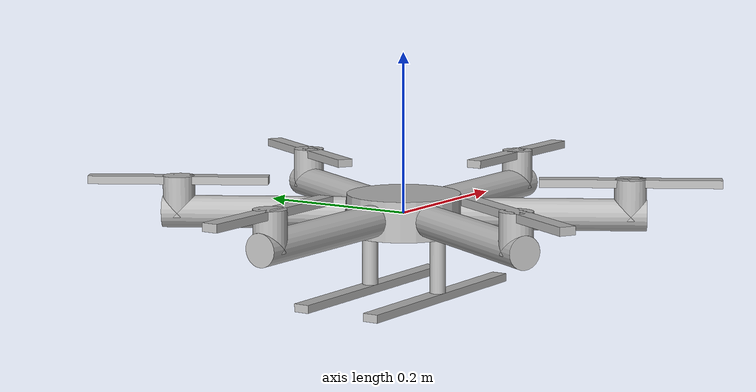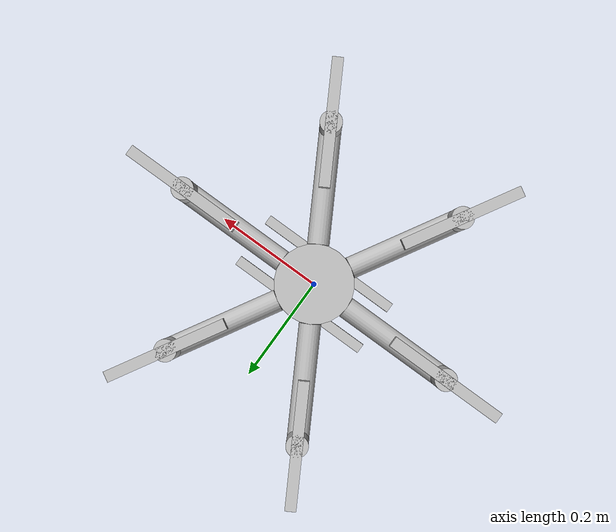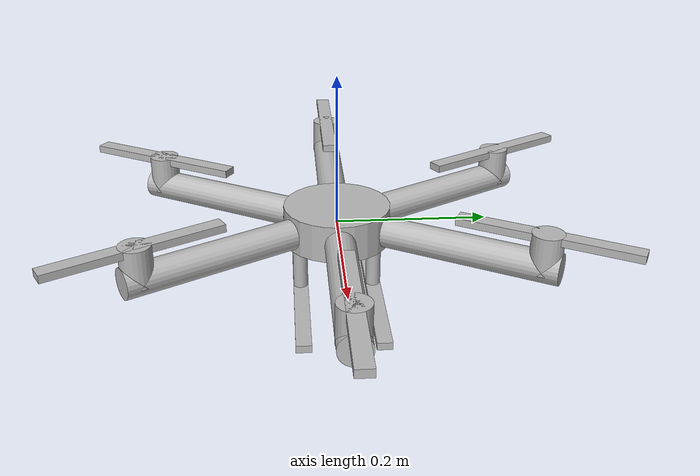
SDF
<sdf version='1.9'>
  <model name='variable_tilt_hexacopter'>
    <link name='base_dummy'>
      <inertial>
        <pose>0 0 -0.0050916496945010194 0 0 0</pose>
        <mass>1.964</mass>
        <inertia>
          <ixx>0.00414594350305499</ixx>
          <ixy>0</ixy>
          <ixz>0</ixz>
          <iyy>0.00314594350305499</iyy>
          <iyz>0</iyz>
          <izz>0.00534206</izz>
        </inertia>
      </inertial>
      <sensor name="imu_sensor" type="imu">
        <always_on>true</always_on>
        <update_rate>100.0</update_rate>
        <pose>0 0 0 0 0 0</pose>
        <topic>/model/variable_tilt_hexacopter/imu</topic>
        <imu>
          <angular_velocity>
            <x>
              <noise type="gaussian">
                <mean>0</mean>
                <stddev>0.009</stddev>
                <bias_mean>0.00075</bias_mean>
                <bias_stddev>0.005</bias_stddev>
                <dynamic_bias_stddev>0.00002</dynamic_bias_stddev>
                <dynamic_bias_correlation_time>400.0</dynamic_bias_correlation_time>
                <precision>0.00025</precision>
              </noise>
            </x>
            <y>
              <noise type="gaussian">
                <mean>0</mean>
                <stddev>0.009</stddev>
                <bias_mean>0.00075</bias_mean>
                <bias_stddev>0.005</bias_stddev>
                <dynamic_bias_stddev>0.00002</dynamic_bias_stddev>
                <dynamic_bias_correlation_time>400.0</dynamic_bias_correlation_time>
                <precision>0.00025</precision>
              </noise>
            </y>
            <z>
              <noise type="gaussian">
                <mean>0</mean>
                <stddev>0.009</stddev>
                <bias_mean>0.00075</bias_mean>
                <bias_stddev>0.005</bias_stddev>
                <dynamic_bias_stddev>0.00002</dynamic_bias_stddev>
                <dynamic_bias_correlation_time>400.0</dynamic_bias_correlation_time>
                <precision>0.00025</precision>
              </noise>
            </z>
          </angular_velocity>
          <linear_acceleration>
            <x>
              <noise type="gaussian">
                <mean>0</mean>
                <stddev>0.021</stddev>
                <bias_mean>0.05</bias_mean>
                <bias_stddev>0.0075</bias_stddev>
                <dynamic_bias_stddev>0.000375</dynamic_bias_stddev>
                <dynamic_bias_correlation_time>175.0</dynamic_bias_correlation_time>
                <precision>0.005</precision>
              </noise>
            </x>
            <y>
              <noise type="gaussian">
                <mean>0</mean>
                <stddev>0.021</stddev>
                <bias_mean>0.05</bias_mean>
                <bias_stddev>0.0075</bias_stddev>
                <dynamic_bias_stddev>0.000375</dynamic_bias_stddev>
                <dynamic_bias_correlation_time>175.0</dynamic_bias_correlation_time>
                <precision>0.005</precision>
              </noise>
            </y>
            <z>
              <noise type="gaussian">
                <mean>0</mean>
                <stddev>0.021</stddev>
                <bias_mean>0.05</bias_mean>
                <bias_stddev>0.0075</bias_stddev>
                <dynamic_bias_stddev>0.000375</dynamic_bias_stddev>
                <dynamic_bias_correlation_time>175.0</dynamic_bias_correlation_time>
                <precision>0.005</precision>
              </noise>
            </z>
          </linear_acceleration>
          <enable_orientation>true</enable_orientation>
        </imu>
        <plugin filename="ignition-gazebo-imu-system" name="ignition::gazebo::systems::Imu"/>
      </sensor>
      <collision name='base_dummy_fixed_joint_lump__base_collision'>
        <pose>0 0 0 0 0 0</pose>
        <geometry>
          <cylinder>
            <length>0.050000000000000003</length>
            <radius>0.070999999999999994</radius>
          </cylinder>
        </geometry>
      </collision>
      <collision name='base_dummy_fixed_joint_lump__gear_leg_left_collision_1'>
        <pose>0 0.050000000000000003 -0.050000000000000003 0 0 0</pose>
        <geometry>
          <cylinder>
            <length>0.10000000000000001</length>
            <radius>0.01</radius>
          </cylinder>
        </geometry>
      </collision>
      <collision name='base_dummy_fixed_joint_lump__gear_skid_left_collision_2'>
        <pose>0 0.050000000000000003 -0.10000000000000001 0 0 0</pose>
        <geometry>
          <box>
            <size>0.29999999999999999 0.02 0.01</size>
          </box>
        </geometry>
      </collision>
      <collision name='base_dummy_fixed_joint_lump__gear_leg_right_collision_3'>
        <pose>0 -0.050000000000000003 -0.050000000000000003 0 0 0</pose>
        <geometry>
          <cylinder>
            <length>0.10000000000000001</length>
            <radius>0.01</radius>
          </cylinder>
        </geometry>
      </collision>
      <collision name='base_dummy_fixed_joint_lump__gear_skid_right_collision_4'>
        <pose>0 -0.050000000000000003 -0.10000000000000001 0 0 0</pose>
        <geometry>
          <box>
            <size>0.29999999999999999 0.02 0.01</size>
          </box>
        </geometry>
      </collision>
      <visual name='base_dummy_fixed_joint_lump__base_visual'>
        <pose>0 0 0 0 0 0</pose>
        <geometry>
          <cylinder>
            <length>0.050000000000000003</length>
            <radius>0.070999999999999994</radius>
          </cylinder>
        </geometry>
      </visual>
      <visual name='base_dummy_fixed_joint_lump__gear_leg_left_visual_1'>
        <pose>0 0.050000000000000003 -0.050000000000000003 0 0 0</pose>
        <geometry>
          <cylinder>
            <length>0.10000000000000001</length>
            <radius>0.01</radius>
          </cylinder>
        </geometry>
      </visual>
      <visual name='base_dummy_fixed_joint_lump__gear_skid_left_visual_2'>
        <pose>0 0.050000000000000003 -0.10000000000000001 0 0 0</pose>
        <geometry>
          <box>
            <size>0.29999999999999999 0.02 0.01</size>
          </box>
        </geometry>
      </visual>
      <visual name='base_dummy_fixed_joint_lump__gear_leg_right_visual_3'>
        <pose>0 -0.050000000000000003 -0.050000000000000003 0 0 0</pose>
        <geometry>
          <cylinder>
            <length>0.10000000000000001</length>
            <radius>0.01</radius>
          </cylinder>
        </geometry>
      </visual>
      <visual name='base_dummy_fixed_joint_lump__gear_skid_right_visual_4'>
        <pose>0 -0.050000000000000003 -0.10000000000000001 0 0 0</pose>
        <geometry>
          <box>
            <size>0.29999999999999999 0.02 0.01</size>
          </box>
        </geometry>
      </visual>
    </link>
    <link name="camera">
      <inertial>
        <pose>0.0 0.0 0.0 0 0 0</pose>
        <mass>0.025</mass>
        <inertia>
          <ixx>0.00002</ixx>
          <ixy>0</ixy>
          <ixz>0</ixz>
          <iyy>0.00002</iyy>
          <iyz>0</iyz>
          <izz>0.00002</izz>
        </inertia>
      </inertial>
      <sensor name="rgbd_camera" type="rgbd_camera">
        <camera>
          <horizontal_fov>1.74</horizontal_fov>
          <image>
            <width>1280</width>
            <height>960</height>
            <format>R8G8B8</format>
          </image>
          <clip>
            <near>0.1</near>
            <far>3000</far>
          </clip>
        </camera>
        <always_on>1</always_on>
        <update_rate>30</update_rate>
        <visualize>true</visualize>
        <topic>/model/variable_tilt_hexacopter/camera</topic>
        <plugin filename="ignition-gazebo-sensors-system" name="ignition::gazebo::systems::Sensors"/>
      </sensor>
      <gravity>true</gravity>
      <velocity_decay/>
    </link>
    <joint name='camera_link_joint' type='fixed'>
      <pose>0 0 -0.045 0 1.5708 0</pose>
      <parent>base_dummy</parent>
      <child>camera</child>
    </joint>
    <joint name='joint_arm_1' type='revolute'>
      <pose relative_to='base_dummy'>0.1855 0 0 0 0 0</pose>
      <parent>base_dummy</parent>
      <child>arm_1</child>
      <axis>
        <xyz>1 0 0</xyz>
        <limit>
          <lower>-1.5700000000000001</lower>
          <upper>1.5700000000000001</upper>
          <effort>5</effort>
          <velocity>2</velocity>
        </limit>
        <dynamics>
          <spring_reference>0</spring_reference>
          <spring_stiffness>0</spring_stiffness>
        </dynamics>
      </axis>
    </joint>
    <link name='arm_1'>
      <pose relative_to='joint_arm_1'>0 0 0 0 0 0</pose>
      <inertial>
        <pose>0.1074032258064516 0 0.0070967741935483867 0 0 0</pose>
        <mass>0.248</mass>
        <inertia>
          <ixx>0.00085083967741935492</ixx>
          <ixy>0</ixy>
          <ixz>2.2709677419354839e-05</ixz>
          <iyy>0.00087354935483870957</iyy>
          <iyz>0</iyz>
          <izz>0.0001172096774193546</izz>
        </inertia>
      </inertial>
      <collision name='arm_1_collision'>
        <pose>0 0 0 0 1.5707963267948966 0</pose>
        <geometry>
          <cylinder>
            <length>0.22900000000000001</length>
            <radius>0.02</radius>
          </cylinder>
        </geometry>
      </collision>
      <collision name='arm_1_fixed_joint_lump__motor_1_collision_1'>
        <pose>0.094500000000000001 0 0.02 0 0 0</pose>
        <geometry>
          <cylinder>
            <length>0.050000000000000003</length>
            <radius>0.02</radius>
          </cylinder>
        </geometry>
      </collision>
      <visual name='arm_1_visual'>
        <pose>0 0 0 0 1.5707963267948966 0</pose>
        <geometry>
          <cylinder>
            <length>0.22900000000000001</length>
            <radius>0.02</radius>
          </cylinder>
        </geometry>
      </visual>
      <visual name='arm_1_fixed_joint_lump__motor_1_visual_1'>
        <pose>0.094500000000000001 0 0.02 0 0 0</pose>
        <geometry>
          <cylinder>
            <length>0.050000000000000003</length>
            <radius>0.02</radius>
          </cylinder>
        </geometry>
      </visual>
    </link>
    <joint name='joint_prop_1' type='revolute'>
      <pose relative_to='arm_1'>0.094500000000000001 0 0.02 0 0 0</pose>
      <parent>arm_1</parent>
      <child>prop_1</child>
      <axis>
        <xyz>0 0 1</xyz>
        <limit>
          <lower>-inf</lower>
          <upper>inf</upper>
        </limit>
        <dynamics>
          <spring_reference>0</spring_reference>
          <spring_stiffness>0</spring_stiffness>
        </dynamics>
      </axis>
    </joint>
    <link name='prop_1'>
      <pose relative_to='joint_prop_1'>0 0 0 0 0 0</pose>
      <inertial>
        <pose>0 0 0.02 0 0 0</pose>
        <mass>0.024</mass>
        <inertia>
          <ixx>4.25e-06</ixx>
          <ixy>0</ixy>
          <ixz>0</ixz>
          <iyy>0.00010145</iyy>
          <iyz>0</iyz>
          <izz>0.0001053</izz>
        </inertia>
      </inertial>
      <collision name='prop_1_collision'>
        <pose>0 0 0.02 0 0 0</pose>
        <geometry>
          <box>
            <size>0.22500000000000001 0.02 0.01</size>
          </box>
        </geometry>
      </collision>
      <visual name='prop_1_visual'>
        <pose>0 0 0.02 0 0 0</pose>
        <geometry>
          <box>
            <size>0.22500000000000001 0.02 0.01</size>
          </box>
        </geometry>
      </visual>
    </link>
    <joint name='joint_arm_2' type='revolute'>
      <pose relative_to='base_dummy'>0.092749999999999999 0.16064300000000001 0 0 0 1.0469999999999999</pose>
      <parent>base_dummy</parent>
      <child>arm_2</child>
      <axis>
        <xyz>1 0 0</xyz>
        <limit>
          <lower>-1.5700000000000001</lower>
          <upper>1.5700000000000001</upper>
          <effort>5</effort>
          <velocity>2</velocity>
        </limit>
        <dynamics>
          <spring_reference>0</spring_reference>
          <spring_stiffness>0</spring_stiffness>
        </dynamics>
      </axis>
    </joint>
    <link name='arm_2'>
      <pose relative_to='joint_arm_2'>0 0 0 0 0 0</pose>
      <inertial>
        <pose>0.1074032258064516 0 0.0070967741935483867 0 0 0</pose>
        <mass>0.248</mass>
        <inertia>
          <ixx>0.00085083967741935492</ixx>
          <ixy>0</ixy>
          <ixz>2.2709677419354839e-05</ixz>
          <iyy>0.00087354935483870957</iyy>
          <iyz>0</iyz>
          <izz>0.0001172096774193546</izz>
        </inertia>
      </inertial>
      <collision name='arm_2_collision'>
        <pose>0 0 0 0 1.5707963267948966 0</pose>
        <geometry>
          <cylinder>
            <length>0.22900000000000001</length>
            <radius>0.02</radius>
          </cylinder>
        </geometry>
      </collision>
      <collision name='arm_2_fixed_joint_lump__motor_2_collision_1'>
        <pose>0.094500000000000001 0 0.02 0 0 0</pose>
        <geometry>
          <cylinder>
            <length>0.050000000000000003</length>
            <radius>0.02</radius>
          </cylinder>
        </geometry>
      </collision>
      <visual name='arm_2_visual'>
        <pose>0 0 0 0 1.5707963267948966 0</pose>
        <geometry>
          <cylinder>
            <length>0.22900000000000001</length>
            <radius>0.02</radius>
          </cylinder>
        </geometry>
      </visual>
      <visual name='arm_2_fixed_joint_lump__motor_2_visual_1'>
        <pose>0.094500000000000001 0 0.02 0 0 0</pose>
        <geometry>
          <cylinder>
            <length>0.050000000000000003</length>
            <radius>0.02</radius>
          </cylinder>
        </geometry>
      </visual>
    </link>
    <joint name='joint_prop_2' type='revolute'>
      <pose relative_to='arm_2'>0.094500000000000001 0 0.02 0 0 0</pose>
      <parent>arm_2</parent>
      <child>prop_2</child>
      <axis>
        <xyz>0 0 1</xyz>
        <limit>
          <lower>-inf</lower>
          <upper>inf</upper>
        </limit>
        <dynamics>
          <spring_reference>0</spring_reference>
          <spring_stiffness>0</spring_stiffness>
        </dynamics>
      </axis>
    </joint>
    <link name='prop_2'>
      <pose relative_to='joint_prop_2'>0 0 0 0 0 0</pose>
      <inertial>
        <pose>0 0 0.02 0 0 0</pose>
        <mass>0.024</mass>
        <inertia>
          <ixx>4.25e-06</ixx>
          <ixy>0</ixy>
          <ixz>0</ixz>
          <iyy>0.00010145</iyy>
          <iyz>0</iyz>
          <izz>0.0001053</izz>
        </inertia>
      </inertial>
      <collision name='prop_2_collision'>
        <pose>0 0 0.02 0 0 0</pose>
        <geometry>
          <box>
            <size>0.22500000000000001 0.02 0.01</size>
          </box>
        </geometry>
      </collision>
      <visual name='prop_2_visual'>
        <pose>0 0 0.02 0 0 0</pose>
        <geometry>
          <box>
            <size>0.22500000000000001 0.02 0.01</size>
          </box>
        </geometry>
      </visual>
    </link>
    <joint name='joint_arm_3' type='revolute'>
      <pose relative_to='base_dummy'>-0.092749999999999999 0.16064300000000001 0 0 0 2.0939999999999999</pose>
      <parent>base_dummy</parent>
      <child>arm_3</child>
      <axis>
        <xyz>1 0 0</xyz>
        <limit>
          <lower>-1.5700000000000001</lower>
          <upper>1.5700000000000001</upper>
          <effort>5</effort>
          <velocity>2</velocity>
        </limit>
        <dynamics>
          <spring_reference>0</spring_reference>
          <spring_stiffness>0</spring_stiffness>
        </dynamics>
      </axis>
    </joint>
    <link name='arm_3'>
      <pose relative_to='joint_arm_3'>0 0 0 0 0 0</pose>
      <inertial>
        <pose>0.1074032258064516 0 0.0070967741935483867 0 0 0</pose>
        <mass>0.248</mass>
        <inertia>
          <ixx>0.00085083967741935492</ixx>
          <ixy>0</ixy>
          <ixz>2.2709677419354839e-05</ixz>
          <iyy>0.00087354935483870957</iyy>
          <iyz>0</iyz>
          <izz>0.0001172096774193546</izz>
        </inertia>
      </inertial>
      <collision name='arm_3_collision'>
        <pose>0 0 0 0 1.5707963267948966 0</pose>
        <geometry>
          <cylinder>
            <length>0.22900000000000001</length>
            <radius>0.02</radius>
          </cylinder>
        </geometry>
      </collision>
      <collision name='arm_3_fixed_joint_lump__motor_3_collision_1'>
        <pose>0.094500000000000001 0 0.02 0 0 0</pose>
        <geometry>
          <cylinder>
            <length>0.050000000000000003</length>
            <radius>0.02</radius>
          </cylinder>
        </geometry>
      </collision>
      <visual name='arm_3_visual'>
        <pose>0 0 0 0 1.5707963267948966 0</pose>
        <geometry>
          <cylinder>
            <length>0.22900000000000001</length>
            <radius>0.02</radius>
          </cylinder>
        </geometry>
      </visual>
      <visual name='arm_3_fixed_joint_lump__motor_3_visual_1'>
        <pose>0.094500000000000001 0 0.02 0 0 0</pose>
        <geometry>
          <cylinder>
            <length>0.050000000000000003</length>
            <radius>0.02</radius>
          </cylinder>
        </geometry>
      </visual>
    </link>
    <joint name='joint_prop_3' type='revolute'>
      <pose relative_to='arm_3'>0.094500000000000001 0 0.02 0 0 0</pose>
      <parent>arm_3</parent>
      <child>prop_3</child>
      <axis>
        <xyz>0 0 1</xyz>
        <limit>
          <lower>-inf</lower>
          <upper>inf</upper>
        </limit>
        <dynamics>
          <spring_reference>0</spring_reference>
          <spring_stiffness>0</spring_stiffness>
        </dynamics>
      </axis>
    </joint>
    <link name='prop_3'>
      <pose relative_to='joint_prop_3'>0 0 0 0 0 0</pose>
      <inertial>
        <pose>0 0 0.02 0 0 0</pose>
        <mass>0.024</mass>
        <inertia>
          <ixx>4.25e-06</ixx>
          <ixy>0</ixy>
          <ixz>0</ixz>
          <iyy>0.00010145</iyy>
          <iyz>0</iyz>
          <izz>0.0001053</izz>
        </inertia>
      </inertial>
      <collision name='prop_3_collision'>
        <pose>0 0 0.02 0 0 0</pose>
        <geometry>
          <box>
            <size>0.22500000000000001 0.02 0.01</size>
          </box>
        </geometry>
      </collision>
      <visual name='prop_3_visual'>
        <pose>0 0 0.02 0 0 0</pose>
        <geometry>
          <box>
            <size>0.22500000000000001 0.02 0.01</size>
          </box>
        </geometry>
      </visual>
    </link>
    <joint name='joint_arm_4' type='revolute'>
      <pose relative_to='base_dummy'>-0.1855 0 0 0 0 3.141</pose>
      <parent>base_dummy</parent>
      <child>arm_4</child>
      <axis>
        <xyz>1 0 0</xyz>
        <limit>
          <lower>-1.5700000000000001</lower>
          <upper>1.5700000000000001</upper>
          <effort>5</effort>
          <velocity>2</velocity>
        </limit>
        <dynamics>
          <spring_reference>0</spring_reference>
          <spring_stiffness>0</spring_stiffness>
        </dynamics>
      </axis>
    </joint>
    <link name='arm_4'>
      <pose relative_to='joint_arm_4'>0 0 0 0 0 0</pose>
      <inertial>
        <pose>0.1074032258064516 0 0.0070967741935483867 0 0 0</pose>
        <mass>0.248</mass>
        <inertia>
          <ixx>0.00085083967741935492</ixx>
          <ixy>0</ixy>
          <ixz>2.2709677419354839e-05</ixz>
          <iyy>0.00087354935483870957</iyy>
          <iyz>0</iyz>
          <izz>0.0001172096774193546</izz>
        </inertia>
      </inertial>
      <collision name='arm_4_collision'>
        <pose>0 0 0 0 1.5707963267948966 0</pose>
        <geometry>
          <cylinder>
            <length>0.22900000000000001</length>
            <radius>0.02</radius>
          </cylinder>
        </geometry>
      </collision>
      <collision name='arm_4_fixed_joint_lump__motor_4_collision_1'>
        <pose>0.094500000000000001 0 0.02 0 0 0</pose>
        <geometry>
          <cylinder>
            <length>0.050000000000000003</length>
            <radius>0.02</radius>
          </cylinder>
        </geometry>
      </collision>
      <visual name='arm_4_visual'>
        <pose>0 0 0 0 1.5707963267948966 0</pose>
        <geometry>
          <cylinder>
            <length>0.22900000000000001</length>
            <radius>0.02</radius>
          </cylinder>
        </geometry>
      </visual>
      <visual name='arm_4_fixed_joint_lump__motor_4_visual_1'>
        <pose>0.094500000000000001 0 0.02 0 0 0</pose>
        <geometry>
          <cylinder>
            <length>0.050000000000000003</length>
            <radius>0.02</radius>
          </cylinder>
        </geometry>
      </visual>
    </link>
    <joint name='joint_prop_4' type='revolute'>
      <pose relative_to='arm_4'>0.094500000000000001 0 0.02 0 0 0</pose>
      <parent>arm_4</parent>
      <child>prop_4</child>
      <axis>
        <xyz>0 0 1</xyz>
        <limit>
          <lower>-inf</lower>
          <upper>inf</upper>
        </limit>
        <dynamics>
          <spring_reference>0</spring_reference>
          <spring_stiffness>0</spring_stiffness>
        </dynamics>
      </axis>
    </joint>
    <link name='prop_4'>
      <pose relative_to='joint_prop_4'>0 0 0 0 0 0</pose>
      <inertial>
        <pose>0 0 0.02 0 0 0</pose>
        <mass>0.024</mass>
        <inertia>
          <ixx>4.25e-06</ixx>
          <ixy>0</ixy>
          <ixz>0</ixz>
          <iyy>0.00010145</iyy>
          <iyz>0</iyz>
          <izz>0.0001053</izz>
        </inertia>
      </inertial>
      <collision name='prop_4_collision'>
        <pose>0 0 0.02 0 0 0</pose>
        <geometry>
          <box>
            <size>0.22500000000000001 0.02 0.01</size>
          </box>
        </geometry>
      </collision>
      <visual name='prop_4_visual'>
        <pose>0 0 0.02 0 0 0</pose>
        <geometry>
          <box>
            <size>0.22500000000000001 0.02 0.01</size>
          </box>
        </geometry>
      </visual>
    </link>
    <joint name='joint_arm_5' type='revolute'>
      <pose relative_to='base_dummy'>-0.092749999999999999 -0.16064300000000001 0 0 0 -2.095185307179587</pose>
      <parent>base_dummy</parent>
      <child>arm_5</child>
      <axis>
        <xyz>1 0 0</xyz>
        <limit>
          <lower>-1.5700000000000001</lower>
          <upper>1.5700000000000001</upper>
          <effort>5</effort>
          <velocity>2</velocity>
        </limit>
        <dynamics>
          <spring_reference>0</spring_reference>
          <spring_stiffness>0</spring_stiffness>
        </dynamics>
      </axis>
    </joint>
    <link name='arm_5'>
      <pose relative_to='joint_arm_5'>0 0 0 0 0 0</pose>
      <inertial>
        <pose>0.1074032258064516 0 0.0070967741935483867 0 0 0</pose>
        <mass>0.248</mass>
        <inertia>
          <ixx>0.00085083967741935492</ixx>
          <ixy>0</ixy>
          <ixz>2.2709677419354839e-05</ixz>
          <iyy>0.00087354935483870957</iyy>
          <iyz>0</iyz>
          <izz>0.0001172096774193546</izz>
        </inertia>
      </inertial>
      <collision name='arm_5_collision'>
        <pose>0 0 0 0 1.5707963267948966 0</pose>
        <geometry>
          <cylinder>
            <length>0.22900000000000001</length>
            <radius>0.02</radius>
          </cylinder>
        </geometry>
      </collision>
      <collision name='arm_5_fixed_joint_lump__motor_5_collision_1'>
        <pose>0.094500000000000001 0 0.02 0 0 0</pose>
        <geometry>
          <cylinder>
            <length>0.050000000000000003</length>
            <radius>0.02</radius>
          </cylinder>
        </geometry>
      </collision>
      <visual name='arm_5_visual'>
        <pose>0 0 0 0 1.5707963267948966 0</pose>
        <geometry>
          <cylinder>
            <length>0.22900000000000001</length>
            <radius>0.02</radius>
          </cylinder>
        </geometry>
      </visual>
      <visual name='arm_5_fixed_joint_lump__motor_5_visual_1'>
        <pose>0.094500000000000001 0 0.02 0 0 0</pose>
        <geometry>
          <cylinder>
            <length>0.050000000000000003</length>
            <radius>0.02</radius>
          </cylinder>
        </geometry>
      </visual>
    </link>
    <joint name='joint_prop_5' type='revolute'>
      <pose relative_to='arm_5'>0.094500000000000001 0 0.02 0 0 0</pose>
      <parent>arm_5</parent>
      <child>prop_5</child>
      <axis>
        <xyz>0 0 1</xyz>
        <limit>
          <lower>-inf</lower>
          <upper>inf</upper>
        </limit>
        <dynamics>
          <spring_reference>0</spring_reference>
          <spring_stiffness>0</spring_stiffness>
        </dynamics>
      </axis>
    </joint>
    <link name='prop_5'>
      <pose relative_to='joint_prop_5'>0 0 0 0 0 0</pose>
      <inertial>
        <pose>0 0 0.02 0 0 0</pose>
        <mass>0.024</mass>
        <inertia>
          <ixx>4.25e-06</ixx>
          <ixy>0</ixy>
          <ixz>0</ixz>
          <iyy>0.00010145</iyy>
          <iyz>0</iyz>
          <izz>0.0001053</izz>
        </inertia>
      </inertial>
      <collision name='prop_5_collision'>
        <pose>0 0 0.02 0 0 0</pose>
        <geometry>
          <box>
            <size>0.22500000000000001 0.02 0.01</size>
          </box>
        </geometry>
      </collision>
      <visual name='prop_5_visual'>
        <pose>0 0 0.02 0 0 0</pose>
        <geometry>
          <box>
            <size>0.22500000000000001 0.02 0.01</size>
          </box>
        </geometry>
      </visual>
    </link>
    <joint name='joint_arm_6' type='revolute'>
      <pose relative_to='base_dummy'>0.092749999999999999 -0.16064300000000001 0 0 0 -1.0481853071795859</pose>
      <parent>base_dummy</parent>
      <child>arm_6</child>
      <axis>
        <xyz>1 0 0</xyz>
        <limit>
          <lower>-1.5700000000000001</lower>
          <upper>1.5700000000000001</upper>
          <effort>5</effort>
          <velocity>2</velocity>
        </limit>
        <dynamics>
          <spring_reference>0</spring_reference>
          <spring_stiffness>0</spring_stiffness>
        </dynamics>
      </axis>
    </joint>
    <link name='arm_6'>
      <pose relative_to='joint_arm_6'>0 0 0 0 0 0</pose>
      <inertial>
        <pose>0.1074032258064516 0 0.0070967741935483867 0 0 0</pose>
        <mass>0.248</mass>
        <inertia>
          <ixx>0.00085083967741935492</ixx>
          <ixy>0</ixy>
          <ixz>2.2709677419354839e-05</ixz>
          <iyy>0.00087354935483870957</iyy>
          <iyz>0</iyz>
          <izz>0.0001172096774193546</izz>
        </inertia>
      </inertial>
      <collision name='arm_6_collision'>
        <pose>0 0 0 0 1.5707963267948966 0</pose>
        <geometry>
          <cylinder>
            <length>0.22900000000000001</length>
            <radius>0.02</radius>
          </cylinder>
        </geometry>
      </collision>
      <collision name='arm_6_fixed_joint_lump__motor_6_collision_1'>
        <pose>0.094500000000000001 0 0.02 0 0 0</pose>
        <geometry>
          <cylinder>
            <length>0.050000000000000003</length>
            <radius>0.02</radius>
          </cylinder>
        </geometry>
      </collision>
      <visual name='arm_6_visual'>
        <pose>0 0 0 0 1.5707963267948966 0</pose>
        <geometry>
          <cylinder>
            <length>0.22900000000000001</length>
            <radius>0.02</radius>
          </cylinder>
        </geometry>
      </visual>
      <visual name='arm_6_fixed_joint_lump__motor_6_visual_1'>
        <pose>0.094500000000000001 0 0.02 0 0 0</pose>
        <geometry>
          <cylinder>
            <length>0.050000000000000003</length>
            <radius>0.02</radius>
          </cylinder>
        </geometry>
      </visual>
    </link>
    <joint name='joint_prop_6' type='revolute'>
      <pose relative_to='arm_6'>0.094500000000000001 0 0.02 0 0 0</pose>
      <parent>arm_6</parent>
      <child>prop_6</child>
      <axis>
        <xyz>0 0 1</xyz>
        <limit>
          <lower>-inf</lower>
          <upper>inf</upper>
        </limit>
        <dynamics>
          <spring_reference>0</spring_reference>
          <spring_stiffness>0</spring_stiffness>
        </dynamics>
      </axis>
    </joint>
    <link name='prop_6'>
      <pose relative_to='joint_prop_6'>0 0 0 0 0 0</pose>
      <inertial>
        <pose>0 0 0.02 0 0 0</pose>
        <mass>0.024</mass>
        <inertia>
          <ixx>4.25e-06</ixx>
          <ixy>0</ixy>
          <ixz>0</ixz>
          <iyy>0.00010145</iyy>
          <iyz>0</iyz>
          <izz>0.0001053</izz>
        </inertia>
      </inertial>
      <collision name='prop_6_collision'>
        <pose>0 0 0.02 0 0 0</pose>
        <geometry>
          <box>
            <size>0.22500000000000001 0.02 0.01</size>
          </box>
        </geometry>
      </collision>
      <visual name='prop_6_visual'>
        <pose>0 0 0.02 0 0 0</pose>
        <geometry>
          <box>
            <size>0.22500000000000001 0.02 0.01</size>
          </box>
        </geometry>
      </visual>
    </link>
    <frame name='camera_joint' attached_to='base'>
      <pose>0 0 0.025000000000000001 0 0 0</pose>
    </frame>
    <frame name='camera_link' attached_to='camera_joint'>
      <pose>0 0 0 0 0 0</pose>
    </frame>
    <frame name='joint_gear_skid_left' attached_to='gear_leg_left'>
      <pose>0 0 0 0 0 0</pose>
    </frame>
    <frame name='gear_skid_left' attached_to='joint_gear_skid_left'>
      <pose>0 0 0 0 0 0</pose>
    </frame>
    <frame name='joint_gear_leg_left' attached_to='base'>
      <pose>0 0.050000000000000003 0 0 0 0</pose>
    </frame>
    <frame name='gear_leg_left' attached_to='joint_gear_leg_left'>
      <pose>0 0 0 0 0 0</pose>
    </frame>
    <frame name='joint_gear_skid_right' attached_to='gear_leg_right'>
      <pose>0 0 0 0 0 0</pose>
    </frame>
    <frame name='gear_skid_right' attached_to='joint_gear_skid_right'>
      <pose>0 0 0 0 0 0</pose>
    </frame>
    <frame name='joint_gear_leg_right' attached_to='base'>
      <pose>0 -0.050000000000000003 0 0 0 0</pose>
    </frame>
    <frame name='gear_leg_right' attached_to='joint_gear_leg_right'>
      <pose>0 0 0 0 0 0</pose>
    </frame>
    <frame name='joint_base_dummy_to_base' attached_to='base_dummy'>
      <pose>0 0 0 0 0 0</pose>
    </frame>
    <frame name='base' attached_to='joint_base_dummy_to_base'>
      <pose>0 0 0 0 0 0</pose>
    </frame>
    <frame name='joint_motor_1' attached_to='arm_1'>
      <pose>0.094500000000000001 0 0.02 0 0 0</pose>
    </frame>
    <frame name='motor_1' attached_to='joint_motor_1'>
      <pose>0 0 0 0 0 0</pose>
    </frame>
    <frame name='joint_motor_2' attached_to='arm_2'>
      <pose>0.094500000000000001 0 0.02 0 0 0</pose>
    </frame>
    <frame name='motor_2' attached_to='joint_motor_2'>
      <pose>0 0 0 0 0 0</pose>
    </frame>
    <frame name='joint_motor_3' attached_to='arm_3'>
      <pose>0.094500000000000001 0 0.02 0 0 0</pose>
    </frame>
    <frame name='motor_3' attached_to='joint_motor_3'>
      <pose>0 0 0 0 0 0</pose>
    </frame>
    <frame name='joint_motor_4' attached_to='arm_4'>
      <pose>0.094500000000000001 0 0.02 0 0 0</pose>
    </frame>
    <frame name='motor_4' attached_to='joint_motor_4'>
      <pose>0 0 0 0 0 0</pose>
    </frame>
    <frame name='joint_motor_5' attached_to='arm_5'>
      <pose>0.094500000000000001 0 0.02 0 0 0</pose>
    </frame>
    <frame name='motor_5' attached_to='joint_motor_5'>
      <pose>0 0 0 0 0 0</pose>
    </frame>
    <frame name='joint_motor_6' attached_to='arm_6'>
      <pose>0.094500000000000001 0 0.02 0 0 0</pose>
    </frame>
    <frame name='motor_6' attached_to='joint_motor_6'>
      <pose>0 0 0 0 0 0</pose>
    </frame>
    <!-- Pluggins -->
    <!-- Pose Publisher Plugin -->
    <plugin filename="ignition-gazebo-pose-publisher-system" name="ignition::gazebo::systems::PosePublisher">
      <publish_link_pose>true</publish_link_pose>
      <publish_sensor_pose>true</publish_sensor_pose>
      <publish_collision_pose>false</publish_collision_pose>
      <publish_visual_pose>false</publish_visual_pose>
      <publish_nested_model_pose>true</publish_nested_model_pose>
      <publish_model_pose>false</publish_model_pose>
      <use_pose_vector_msg>true</use_pose_vector_msg>
      <static_publisher>true</static_publisher>
      <static_update_frequency>100</static_update_frequency>
    </plugin>
    <!-- Joint states plugin -->
    <plugin filename="ignition-gazebo-joint-state-publisher-system" name="ignition::gazebo::systems::JointStatePublisher">
      <robotNamespace>/model/variable_tilt_hexacopter</robotNamespace>
    </plugin>
    <!-- Odometry Plugin -->
    <plugin filename="ignition-gazebo-odometry-publisher-system" name="ignition::gazebo::systems::OdometryPublisher">
      <dimensions>3</dimensions>
      <odom_publish_frequency>100</odom_publish_frequency>
    </plugin>
    <!-- ========== Sub-macros ========== -->
    <!-- ========== Plugin Instantiations ========== -->
    <plugin filename="libignition-gazebo-multicopter-motor-model-system" name="ignition::gazebo::systems::MulticopterMotorModel">
      <robotNamespace>/model/variable_tilt_hexacopter</robotNamespace>
      <jointName>joint_prop_1</jointName>
      <linkName>prop_1</linkName>
      <turningDirection>ccw</turningDirection>
      <timeConstantUp>0.0125</timeConstantUp>
      <timeConstantDown>0.025</timeConstantDown>
      <maxRotVelocity>1000.0</maxRotVelocity>
      <motorConstant>8.54858e-06</motorConstant>
      <momentConstant>0.016</momentConstant>
      <commandSubTopic>command/motor_speed</commandSubTopic>
      <motorNumber>0</motorNumber>
      <rotorDragCoefficient>8.06428e-05</rotorDragCoefficient>
      <rollingMomentCoefficient>1e-06</rollingMomentCoefficient>
      <motorSpeedPubTopic>motor_speed/0</motorSpeedPubTopic>
      <rotorVelocitySlowdownSim>10</rotorVelocitySlowdownSim>
      <motorType>velocity</motorType>
    </plugin>
    <plugin filename="libignition-gazebo-multicopter-motor-model-system" name="ignition::gazebo::systems::MulticopterMotorModel">
      <robotNamespace>/model/variable_tilt_hexacopter</robotNamespace>
      <jointName>joint_prop_2</jointName>
      <linkName>prop_2</linkName>
      <turningDirection>cw</turningDirection>
      <timeConstantUp>0.0125</timeConstantUp>
      <timeConstantDown>0.025</timeConstantDown>
      <maxRotVelocity>1000.0</maxRotVelocity>
      <motorConstant>8.54858e-06</motorConstant>
      <momentConstant>0.016</momentConstant>
      <commandSubTopic>command/motor_speed</commandSubTopic>
      <motorNumber>1</motorNumber>
      <rotorDragCoefficient>8.06428e-05</rotorDragCoefficient>
      <rollingMomentCoefficient>1e-06</rollingMomentCoefficient>
      <motorSpeedPubTopic>motor_speed/1</motorSpeedPubTopic>
      <rotorVelocitySlowdownSim>10</rotorVelocitySlowdownSim>
      <motorType>velocity</motorType>
    </plugin>
    <plugin filename="libignition-gazebo-multicopter-motor-model-system" name="ignition::gazebo::systems::MulticopterMotorModel">
      <robotNamespace>/model/variable_tilt_hexacopter</robotNamespace>
      <jointName>joint_prop_3</jointName>
      <linkName>prop_3</linkName>
      <turningDirection>ccw</turningDirection>
      <timeConstantUp>0.0125</timeConstantUp>
      <timeConstantDown>0.025</timeConstantDown>
      <maxRotVelocity>1000.0</maxRotVelocity>
      <motorConstant>8.54858e-06</motorConstant>
      <momentConstant>0.016</momentConstant>
      <commandSubTopic>command/motor_speed</commandSubTopic>
      <motorNumber>2</motorNumber>
      <rotorDragCoefficient>8.06428e-05</rotorDragCoefficient>
      <rollingMomentCoefficient>1e-06</rollingMomentCoefficient>
      <motorSpeedPubTopic>motor_speed/2</motorSpeedPubTopic>
      <rotorVelocitySlowdownSim>10</rotorVelocitySlowdownSim>
      <motorType>velocity</motorType>
    </plugin>
    <plugin filename="libignition-gazebo-multicopter-motor-model-system" name="ignition::gazebo::systems::MulticopterMotorModel">
      <robotNamespace>/model/variable_tilt_hexacopter</robotNamespace>
      <jointName>joint_prop_4</jointName>
      <linkName>prop_4</linkName>
      <turningDirection>cw</turningDirection>
      <timeConstantUp>0.0125</timeConstantUp>
      <timeConstantDown>0.025</timeConstantDown>
      <maxRotVelocity>1000.0</maxRotVelocity>
      <motorConstant>8.54858e-06</motorConstant>
      <momentConstant>0.016</momentConstant>
      <commandSubTopic>command/motor_speed</commandSubTopic>
      <motorNumber>3</motorNumber>
      <rotorDragCoefficient>8.06428e-05</rotorDragCoefficient>
      <rollingMomentCoefficient>1e-06</rollingMomentCoefficient>
      <motorSpeedPubTopic>motor_speed/3</motorSpeedPubTopic>
      <rotorVelocitySlowdownSim>10</rotorVelocitySlowdownSim>
      <motorType>velocity</motorType>
    </plugin>
    <plugin filename="libignition-gazebo-multicopter-motor-model-system" name="ignition::gazebo::systems::MulticopterMotorModel">
      <robotNamespace>/model/variable_tilt_hexacopter</robotNamespace>
      <jointName>joint_prop_5</jointName>
      <linkName>prop_5</linkName>
      <turningDirection>ccw</turningDirection>
      <timeConstantUp>0.0125</timeConstantUp>
      <timeConstantDown>0.025</timeConstantDown>
      <maxRotVelocity>1000.0</maxRotVelocity>
      <motorConstant>8.54858e-06</motorConstant>
      <momentConstant>0.016</momentConstant>
      <commandSubTopic>command/motor_speed</commandSubTopic>
      <motorNumber>4</motorNumber>
      <rotorDragCoefficient>8.06428e-05</rotorDragCoefficient>
      <rollingMomentCoefficient>1e-06</rollingMomentCoefficient>
      <motorSpeedPubTopic>motor_speed/4</motorSpeedPubTopic>
      <rotorVelocitySlowdownSim>10</rotorVelocitySlowdownSim>
      <motorType>velocity</motorType>
    </plugin>
    <plugin filename="libignition-gazebo-multicopter-motor-model-system" name="ignition::gazebo::systems::MulticopterMotorModel">
      <robotNamespace>/model/variable_tilt_hexacopter</robotNamespace>
      <jointName>joint_prop_6</jointName>
      <linkName>prop_6</linkName>
      <turningDirection>cw</turningDirection>
      <timeConstantUp>0.0125</timeConstantUp>
      <timeConstantDown>0.025</timeConstantDown>
      <maxRotVelocity>1000.0</maxRotVelocity>
      <motorConstant>8.54858e-06</motorConstant>
      <momentConstant>0.016</momentConstant>
      <commandSubTopic>command/motor_speed</commandSubTopic>
      <motorNumber>5</motorNumber>
      <rotorDragCoefficient>8.06428e-05</rotorDragCoefficient>
      <rollingMomentCoefficient>1e-06</rollingMomentCoefficient>
      <motorSpeedPubTopic>motor_speed/5</motorSpeedPubTopic>
      <rotorVelocitySlowdownSim>10</rotorVelocitySlowdownSim>
      <motorType>velocity</motorType>
    </plugin>
    <plugin filename="libignition-gazebo-joint-position-controller-system" name="ignition::gazebo::systems::JointPositionController">
      <joint_name>joint_arm_1</joint_name>
      <topic>/model/variable_tilt_hexacopter/joint_arm_1/cmd_pos</topic>
    </plugin>
    <plugin filename="libignition-gazebo-joint-position-controller-system" name="ignition::gazebo::systems::JointPositionController">
      <joint_name>joint_arm_2</joint_name>
      <topic>/model/variable_tilt_hexacopter/joint_arm_2/cmd_pos</topic>
    </plugin>
    <plugin filename="libignition-gazebo-joint-position-controller-system" name="ignition::gazebo::systems::JointPositionController">
      <joint_name>joint_arm_3</joint_name>
      <topic>/model/variable_tilt_hexacopter/joint_arm_3/cmd_pos</topic>
    </plugin>
    <plugin filename="libignition-gazebo-joint-position-controller-system" name="ignition::gazebo::systems::JointPositionController">
      <joint_name>joint_arm_4</joint_name>
      <topic>/model/variable_tilt_hexacopter/joint_arm_4/cmd_pos</topic>
    </plugin>
    <plugin filename="libignition-gazebo-joint-position-controller-system" name="ignition::gazebo::systems::JointPositionController">
      <joint_name>joint_arm_5</joint_name>
      <topic>/model/variable_tilt_hexacopter/joint_arm_5/cmd_pos</topic>
    </plugin>
    <plugin filename="libignition-gazebo-joint-position-controller-system" name="ignition::gazebo::systems::JointPositionController">
      <joint_name>joint_arm_6</joint_name>
      <topic>/model/variable_tilt_hexacopter/joint_arm_6/cmd_pos</topic>
    </plugin>
  </model>
</sdf>
